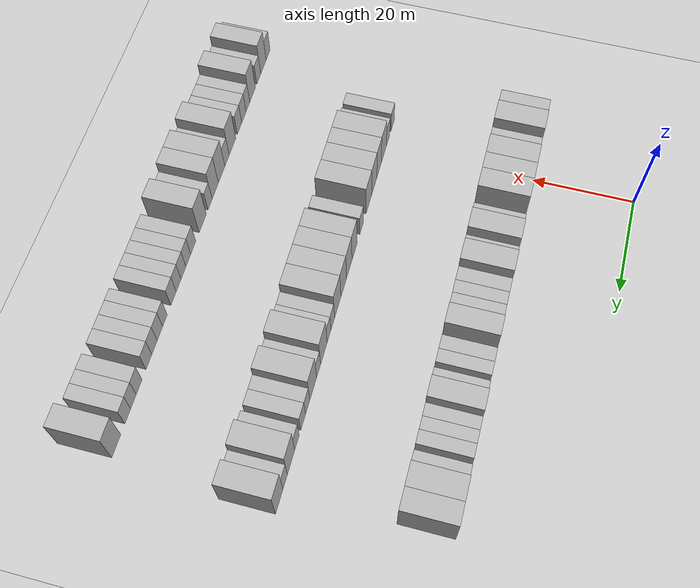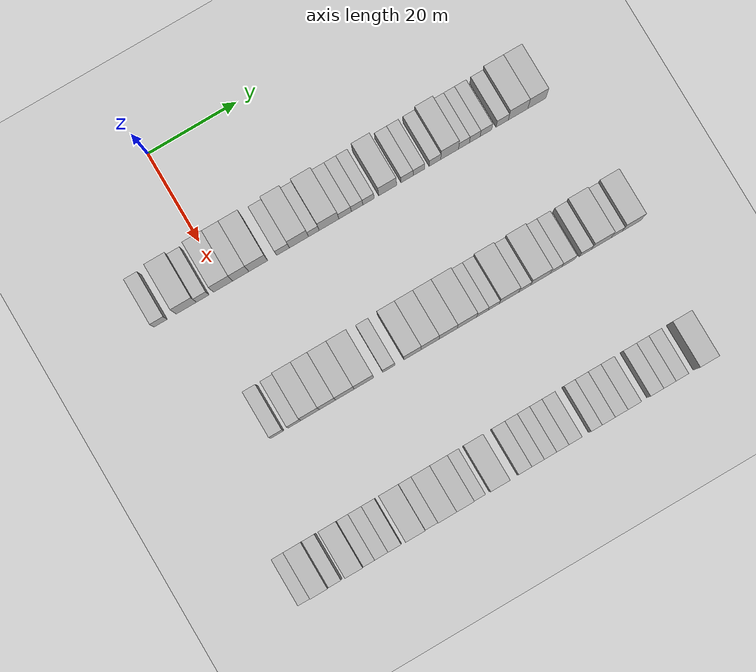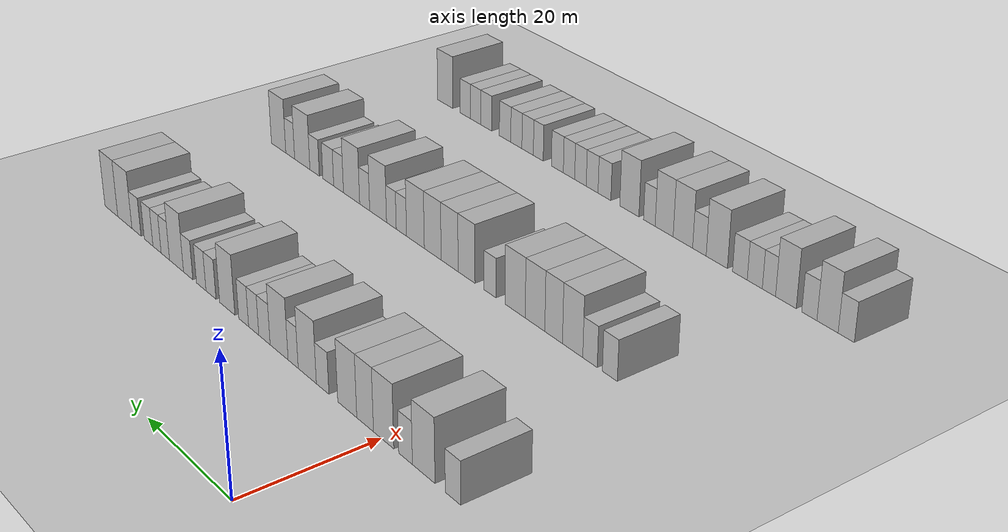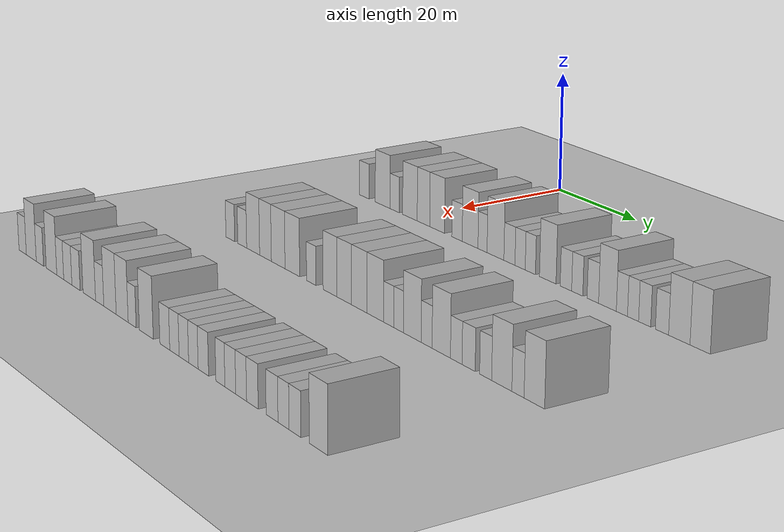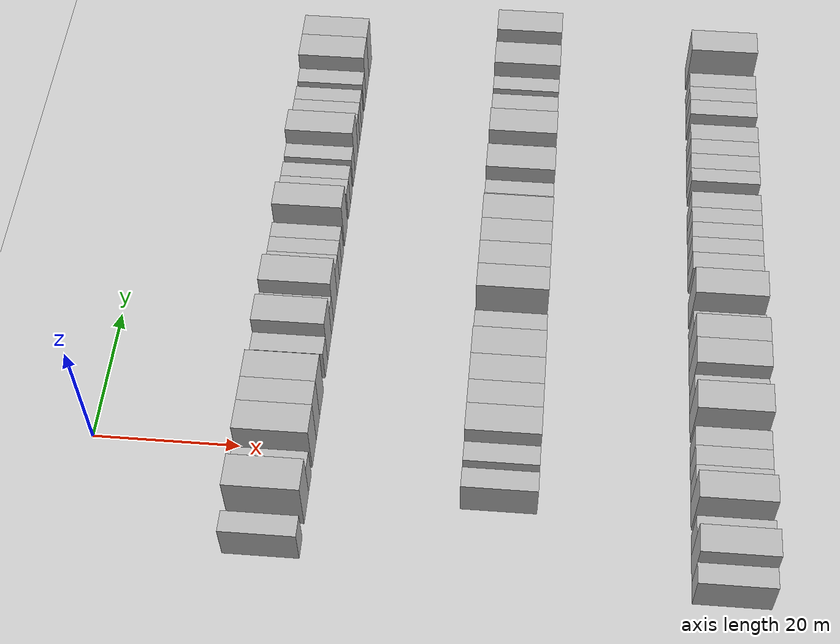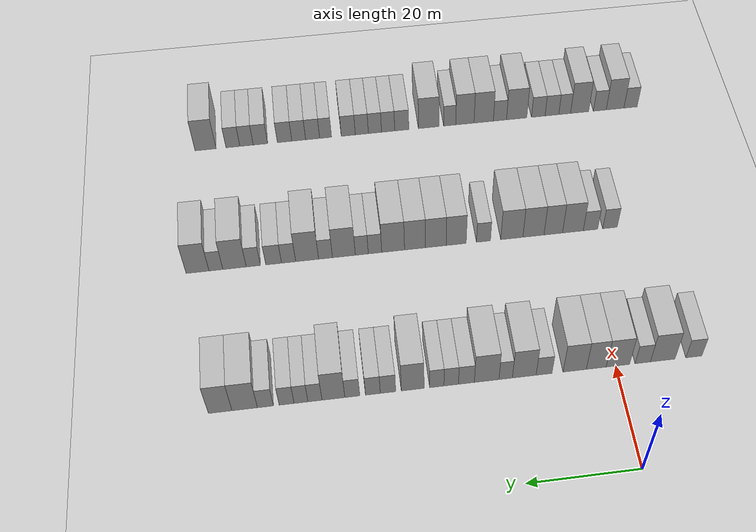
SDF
<sdf version="1.6">
 <world name="default">
  <include><name>ground_plane_1</name><uri>model://HANNAS_ground_plane</uri></include>
  <model name="building_107">
   <static>1</static>
   <pose>25.0000 -14.3076 0 0.000000 0.000000 0.000000</pose>
   <link name="link">
    <pose>0 0 3.00 0 0 0</pose>
    <collision name="collision"><geometry><box><size>10.0000 2.9524 6.0000</size></box></geometry></collision>
    <visual name="visual">
     <cast_shadows>0</cast_shadows>
     <geometry><box><size>10.0000 2.9524 6.0000</size></box></geometry>
     <material>
      <script>
       <uri>model://HANNAS_wall/materials/scripts</uri>
       <uri>model://HANNAS_wall/materials/textures</uri>
       <name>vrc/HANNAS_wall</name>
      </script>
     </material>
    </visual>
   </link>
  </model>
  <model name="building_108">
   <static>1</static>
   <pose>25.0000 -8.5822 0 0.000000 0.000000 0.000000</pose>
   <link name="link">
    <pose>0 0 4.50 0 0 0</pose>
    <collision name="collision"><geometry><box><size>10.0000 4.4984 9.0000</size></box></geometry></collision>
    <visual name="visual">
     <cast_shadows>0</cast_shadows>
     <geometry><box><size>10.0000 4.4984 9.0000</size></box></geometry>
     <material>
      <script>
       <uri>model://HANNAS_wall/materials/scripts</uri>
       <uri>model://HANNAS_wall/materials/textures</uri>
       <name>vrc/HANNAS_wall</name>
      </script>
     </material>
    </visual>
   </link>
  </model>
  <model name="building_109">
   <static>1</static>
   <pose>25.0000 -4.9308 0 0.000000 0.000000 0.000000</pose>
   <link name="link">
    <pose>0 0 3.00 0 0 0</pose>
    <collision name="collision"><geometry><box><size>10.0000 2.8045 6.0000</size></box></geometry></collision>
    <visual name="visual">
     <cast_shadows>0</cast_shadows>
     <geometry><box><size>10.0000 2.8045 6.0000</size></box></geometry>
     <material>
      <script>
       <uri>model://HANNAS_wall/materials/scripts</uri>
       <uri>model://HANNAS_wall/materials/textures</uri>
       <name>vrc/HANNAS_wall</name>
      </script>
     </material>
    </visual>
   </link>
  </model>
  <model name="building_110">
   <static>1</static>
   <pose>25.0000 -0.3886 0 0.000000 0.000000 0.000000</pose>
   <link name="link">
    <pose>0 0 4.50 0 0 0</pose>
    <collision name="collision"><geometry><box><size>10.0000 4.2799 9.0000</size></box></geometry></collision>
    <visual name="visual">
     <cast_shadows>0</cast_shadows>
     <geometry><box><size>10.0000 4.2799 9.0000</size></box></geometry>
     <material>
      <script>
       <uri>model://HANNAS_wall/materials/scripts</uri>
       <uri>model://HANNAS_wall/materials/textures</uri>
       <name>vrc/HANNAS_wall</name>
      </script>
     </material>
    </visual>
   </link>
  </model>
  <model name="building_111">
   <static>1</static>
   <pose>25.0000 3.5572 0 0.000000 0.000000 0.000000</pose>
   <link name="link">
    <pose>0 0 4.50 0 0 0</pose>
    <collision name="collision"><geometry><box><size>10.0000 3.6117 9.0000</size></box></geometry></collision>
    <visual name="visual">
     <cast_shadows>0</cast_shadows>
     <geometry><box><size>10.0000 3.6117 9.0000</size></box></geometry>
     <material>
      <script>
       <uri>model://HANNAS_wall/materials/scripts</uri>
       <uri>model://HANNAS_wall/materials/textures</uri>
       <name>vrc/HANNAS_wall</name>
      </script>
     </material>
    </visual>
   </link>
  </model>
  <model name="building_112">
   <static>1</static>
   <pose>25.0000 7.4691 0 0.000000 0.000000 0.000000</pose>
   <link name="link">
    <pose>0 0 4.50 0 0 0</pose>
    <collision name="collision"><geometry><box><size>10.0000 4.2121 9.0000</size></box></geometry></collision>
    <visual name="visual">
     <cast_shadows>0</cast_shadows>
     <geometry><box><size>10.0000 4.2121 9.0000</size></box></geometry>
     <material>
      <script>
       <uri>model://HANNAS_wall/materials/scripts</uri>
       <uri>model://HANNAS_wall/materials/textures</uri>
       <name>vrc/HANNAS_wall</name>
      </script>
     </material>
    </visual>
   </link>
  </model>
  <model name="building_113">
   <static>1</static>
   <pose>25.0000 13.0116 0 0.000000 0.000000 0.000000</pose>
   <link name="link">
    <pose>0 0 3.00 0 0 0</pose>
    <collision name="collision"><geometry><box><size>10.0000 2.8727 6.0000</size></box></geometry></collision>
    <visual name="visual">
     <cast_shadows>0</cast_shadows>
     <geometry><box><size>10.0000 2.8727 6.0000</size></box></geometry>
     <material>
      <script>
       <uri>model://HANNAS_wall/materials/scripts</uri>
       <uri>model://HANNAS_wall/materials/textures</uri>
       <name>vrc/HANNAS_wall</name>
      </script>
     </material>
    </visual>
   </link>
  </model>
  <model name="building_114">
   <static>1</static>
   <pose>25.0000 16.5808 0 0.000000 0.000000 0.000000</pose>
   <link name="link">
    <pose>0 0 4.50 0 0 0</pose>
    <collision name="collision"><geometry><box><size>10.0000 4.2657 9.0000</size></box></geometry></collision>
    <visual name="visual">
     <cast_shadows>0</cast_shadows>
     <geometry><box><size>10.0000 4.2657 9.0000</size></box></geometry>
     <material>
      <script>
       <uri>model://HANNAS_wall/materials/scripts</uri>
       <uri>model://HANNAS_wall/materials/textures</uri>
       <name>vrc/HANNAS_wall</name>
      </script>
     </material>
    </visual>
   </link>
  </model>
  <model name="building_115">
   <static>1</static>
   <pose>25.0000 19.9189 0 0.000000 0.000000 0.000000</pose>
   <link name="link">
    <pose>0 0 3.00 0 0 0</pose>
    <collision name="collision"><geometry><box><size>10.0000 2.4104 6.0000</size></box></geometry></collision>
    <visual name="visual">
     <cast_shadows>0</cast_shadows>
     <geometry><box><size>10.0000 2.4104 6.0000</size></box></geometry>
     <material>
      <script>
       <uri>model://HANNAS_wall/materials/scripts</uri>
       <uri>model://HANNAS_wall/materials/textures</uri>
       <name>vrc/HANNAS_wall</name>
      </script>
     </material>
    </visual>
   </link>
  </model>
  <model name="building_116">
   <static>1</static>
   <pose>25.0000 23.3220 0 0.000000 0.000000 0.000000</pose>
   <link name="link">
    <pose>0 0 4.50 0 0 0</pose>
    <collision name="collision"><geometry><box><size>10.0000 4.3959 9.0000</size></box></geometry></collision>
    <visual name="visual">
     <cast_shadows>0</cast_shadows>
     <geometry><box><size>10.0000 4.3959 9.0000</size></box></geometry>
     <material>
      <script>
       <uri>model://HANNAS_wall/materials/scripts</uri>
       <uri>model://HANNAS_wall/materials/textures</uri>
       <name>vrc/HANNAS_wall</name>
      </script>
     </material>
    </visual>
   </link>
  </model>
  <model name="building_117">
   <static>1</static>
   <pose>25.0000 26.9374 0 0.000000 0.000000 0.000000</pose>
   <link name="link">
    <pose>0 0 3.00 0 0 0</pose>
    <collision name="collision"><geometry><box><size>10.0000 2.8348 6.0000</size></box></geometry></collision>
    <visual name="visual">
     <cast_shadows>0</cast_shadows>
     <geometry><box><size>10.0000 2.8348 6.0000</size></box></geometry>
     <material>
      <script>
       <uri>model://HANNAS_wall/materials/scripts</uri>
       <uri>model://HANNAS_wall/materials/textures</uri>
       <name>vrc/HANNAS_wall</name>
      </script>
     </material>
    </visual>
   </link>
  </model>
  <model name="building_118">
   <static>1</static>
   <pose>25.0000 29.6490 0 0.000000 0.000000 0.000000</pose>
   <link name="link">
    <pose>0 0 3.00 0 0 0</pose>
    <collision name="collision"><geometry><box><size>10.0000 2.5884 6.0000</size></box></geometry></collision>
    <visual name="visual">
     <cast_shadows>0</cast_shadows>
     <geometry><box><size>10.0000 2.5884 6.0000</size></box></geometry>
     <material>
      <script>
       <uri>model://HANNAS_wall/materials/scripts</uri>
       <uri>model://HANNAS_wall/materials/textures</uri>
       <name>vrc/HANNAS_wall</name>
      </script>
     </material>
    </visual>
   </link>
  </model>
  <model name="building_119">
   <static>1</static>
   <pose>25.0000 32.2151 0 0.000000 0.000000 0.000000</pose>
   <link name="link">
    <pose>0 0 3.00 0 0 0</pose>
    <collision name="collision"><geometry><box><size>10.0000 2.5438 6.0000</size></box></geometry></collision>
    <visual name="visual">
     <cast_shadows>0</cast_shadows>
     <geometry><box><size>10.0000 2.5438 6.0000</size></box></geometry>
     <material>
      <script>
       <uri>model://HANNAS_wall/materials/scripts</uri>
       <uri>model://HANNAS_wall/materials/textures</uri>
       <name>vrc/HANNAS_wall</name>
      </script>
     </material>
    </visual>
   </link>
  </model>
  <model name="building_120">
   <static>1</static>
   <pose>25.0000 36.5011 0 0.000000 0.000000 0.000000</pose>
   <link name="link">
    <pose>0 0 4.50 0 0 0</pose>
    <collision name="collision"><geometry><box><size>10.0000 4.0283 9.0000</size></box></geometry></collision>
    <visual name="visual">
     <cast_shadows>0</cast_shadows>
     <geometry><box><size>10.0000 4.0283 9.0000</size></box></geometry>
     <material>
      <script>
       <uri>model://HANNAS_wall/materials/scripts</uri>
       <uri>model://HANNAS_wall/materials/textures</uri>
       <name>vrc/HANNAS_wall</name>
      </script>
     </material>
    </visual>
   </link>
  </model>
  <model name="building_121">
   <static>1</static>
   <pose>25.0000 40.8736 0 0.000000 0.000000 0.000000</pose>
   <link name="link">
    <pose>0 0 3.00 0 0 0</pose>
    <collision name="collision"><geometry><box><size>10.0000 2.7166 6.0000</size></box></geometry></collision>
    <visual name="visual">
     <cast_shadows>0</cast_shadows>
     <geometry><box><size>10.0000 2.7166 6.0000</size></box></geometry>
     <material>
      <script>
       <uri>model://HANNAS_wall/materials/scripts</uri>
       <uri>model://HANNAS_wall/materials/textures</uri>
       <name>vrc/HANNAS_wall</name>
      </script>
     </material>
    </visual>
   </link>
  </model>
  <model name="building_122">
   <static>1</static>
   <pose>25.0000 43.5399 0 0.000000 0.000000 0.000000</pose>
   <link name="link">
    <pose>0 0 3.00 0 0 0</pose>
    <collision name="collision"><geometry><box><size>10.0000 2.6159 6.0000</size></box></geometry></collision>
    <visual name="visual">
     <cast_shadows>0</cast_shadows>
     <geometry><box><size>10.0000 2.6159 6.0000</size></box></geometry>
     <material>
      <script>
       <uri>model://HANNAS_wall/materials/scripts</uri>
       <uri>model://HANNAS_wall/materials/textures</uri>
       <name>vrc/HANNAS_wall</name>
      </script>
     </material>
    </visual>
   </link>
  </model>
  <model name="building_123">
   <static>1</static>
   <pose>25.0000 47.1643 0 0.000000 0.000000 0.000000</pose>
   <link name="link">
    <pose>0 0 3.00 0 0 0</pose>
    <collision name="collision"><geometry><box><size>10.0000 2.6329 6.0000</size></box></geometry></collision>
    <visual name="visual">
     <cast_shadows>0</cast_shadows>
     <geometry><box><size>10.0000 2.6329 6.0000</size></box></geometry>
     <material>
      <script>
       <uri>model://HANNAS_wall/materials/scripts</uri>
       <uri>model://HANNAS_wall/materials/textures</uri>
       <name>vrc/HANNAS_wall</name>
      </script>
     </material>
    </visual>
   </link>
  </model>
  <model name="building_124">
   <static>1</static>
   <pose>25.0000 50.4833 0 0.000000 0.000000 0.000000</pose>
   <link name="link">
    <pose>0 0 4.50 0 0 0</pose>
    <collision name="collision"><geometry><box><size>10.0000 4.0051 9.0000</size></box></geometry></collision>
    <visual name="visual">
     <cast_shadows>0</cast_shadows>
     <geometry><box><size>10.0000 4.0051 9.0000</size></box></geometry>
     <material>
      <script>
       <uri>model://HANNAS_wall/materials/scripts</uri>
       <uri>model://HANNAS_wall/materials/textures</uri>
       <name>vrc/HANNAS_wall</name>
      </script>
     </material>
    </visual>
   </link>
  </model>
  <model name="building_125">
   <static>1</static>
   <pose>25.0000 53.7181 0 0.000000 0.000000 0.000000</pose>
   <link name="link">
    <pose>0 0 3.00 0 0 0</pose>
    <collision name="collision"><geometry><box><size>10.0000 2.4645 6.0000</size></box></geometry></collision>
    <visual name="visual">
     <cast_shadows>0</cast_shadows>
     <geometry><box><size>10.0000 2.4645 6.0000</size></box></geometry>
     <material>
      <script>
       <uri>model://HANNAS_wall/materials/scripts</uri>
       <uri>model://HANNAS_wall/materials/textures</uri>
       <name>vrc/HANNAS_wall</name>
      </script>
     </material>
    </visual>
   </link>
  </model>
  <model name="building_126">
   <static>1</static>
   <pose>25.0000 56.1617 0 0.000000 0.000000 0.000000</pose>
   <link name="link">
    <pose>0 0 3.00 0 0 0</pose>
    <collision name="collision"><geometry><box><size>10.0000 2.4226 6.0000</size></box></geometry></collision>
    <visual name="visual">
     <cast_shadows>0</cast_shadows>
     <geometry><box><size>10.0000 2.4226 6.0000</size></box></geometry>
     <material>
      <script>
       <uri>model://HANNAS_wall/materials/scripts</uri>
       <uri>model://HANNAS_wall/materials/textures</uri>
       <name>vrc/HANNAS_wall</name>
      </script>
     </material>
    </visual>
   </link>
  </model>
  <model name="building_127">
   <static>1</static>
   <pose>25.0000 58.6759 0 0.000000 0.000000 0.000000</pose>
   <link name="link">
    <pose>0 0 3.00 0 0 0</pose>
    <collision name="collision"><geometry><box><size>10.0000 2.6058 6.0000</size></box></geometry></collision>
    <visual name="visual">
     <cast_shadows>0</cast_shadows>
     <geometry><box><size>10.0000 2.6058 6.0000</size></box></geometry>
     <material>
      <script>
       <uri>model://HANNAS_wall/materials/scripts</uri>
       <uri>model://HANNAS_wall/materials/textures</uri>
       <name>vrc/HANNAS_wall</name>
      </script>
     </material>
    </visual>
   </link>
  </model>
  <model name="building_128">
   <static>1</static>
   <pose>25.0000 62.3687 0 0.000000 0.000000 0.000000</pose>
   <link name="link">
    <pose>0 0 3.00 0 0 0</pose>
    <collision name="collision"><geometry><box><size>10.0000 2.7796 6.0000</size></box></geometry></collision>
    <visual name="visual">
     <cast_shadows>0</cast_shadows>
     <geometry><box><size>10.0000 2.7796 6.0000</size></box></geometry>
     <material>
      <script>
       <uri>model://HANNAS_wall/materials/scripts</uri>
       <uri>model://HANNAS_wall/materials/textures</uri>
       <name>vrc/HANNAS_wall</name>
      </script>
     </material>
    </visual>
   </link>
  </model>
  <model name="building_129">
   <static>1</static>
   <pose>25.0000 65.9655 0 0.000000 0.000000 0.000000</pose>
   <link name="link">
    <pose>0 0 4.50 0 0 0</pose>
    <collision name="collision"><geometry><box><size>10.0000 4.4140 9.0000</size></box></geometry></collision>
    <visual name="visual">
     <cast_shadows>0</cast_shadows>
     <geometry><box><size>10.0000 4.4140 9.0000</size></box></geometry>
     <material>
      <script>
       <uri>model://HANNAS_wall/materials/scripts</uri>
       <uri>model://HANNAS_wall/materials/textures</uri>
       <name>vrc/HANNAS_wall</name>
      </script>
     </material>
    </visual>
   </link>
  </model>
  <model name="building_130">
   <static>1</static>
   <pose>25.0000 70.2178 0 0.000000 0.000000 0.000000</pose>
   <link name="link">
    <pose>0 0 4.50 0 0 0</pose>
    <collision name="collision"><geometry><box><size>10.0000 4.0906 9.0000</size></box></geometry></collision>
    <visual name="visual">
     <cast_shadows>0</cast_shadows>
     <geometry><box><size>10.0000 4.0906 9.0000</size></box></geometry>
     <material>
      <script>
       <uri>model://HANNAS_wall/materials/scripts</uri>
       <uri>model://HANNAS_wall/materials/textures</uri>
       <name>vrc/HANNAS_wall</name>
      </script>
     </material>
    </visual>
   </link>
  </model>
  <model name="building_339">
   <static>1</static>
   <pose>55.0000 -5.6734 0 0.000000 0.000000 0.000000</pose>
   <link name="link">
    <pose>0 0 3.00 0 0 0</pose>
    <collision name="collision"><geometry><box><size>10.0000 2.8665 6.0000</size></box></geometry></collision>
    <visual name="visual">
     <cast_shadows>0</cast_shadows>
     <geometry><box><size>10.0000 2.8665 6.0000</size></box></geometry>
     <material>
      <script>
       <uri>model://HANNAS_wall/materials/scripts</uri>
       <uri>model://HANNAS_wall/materials/textures</uri>
       <name>vrc/HANNAS_wall</name>
      </script>
     </material>
    </visual>
   </link>
  </model>
  <model name="building_340">
   <static>1</static>
   <pose>55.0000 -1.8192 0 0.000000 0.000000 0.000000</pose>
   <link name="link">
    <pose>0 0 3.00 0 0 0</pose>
    <collision name="collision"><geometry><box><size>10.0000 2.8419 6.0000</size></box></geometry></collision>
    <visual name="visual">
     <cast_shadows>0</cast_shadows>
     <geometry><box><size>10.0000 2.8419 6.0000</size></box></geometry>
     <material>
      <script>
       <uri>model://HANNAS_wall/materials/scripts</uri>
       <uri>model://HANNAS_wall/materials/textures</uri>
       <name>vrc/HANNAS_wall</name>
      </script>
     </material>
    </visual>
   </link>
  </model>
  <model name="building_341">
   <static>1</static>
   <pose>55.0000 1.6430 0 0.000000 0.000000 0.000000</pose>
   <link name="link">
    <pose>0 0 4.50 0 0 0</pose>
    <collision name="collision"><geometry><box><size>10.0000 4.0826 9.0000</size></box></geometry></collision>
    <visual name="visual">
     <cast_shadows>0</cast_shadows>
     <geometry><box><size>10.0000 4.0826 9.0000</size></box></geometry>
     <material>
      <script>
       <uri>model://HANNAS_wall/materials/scripts</uri>
       <uri>model://HANNAS_wall/materials/textures</uri>
       <name>vrc/HANNAS_wall</name>
      </script>
     </material>
    </visual>
   </link>
  </model>
  <model name="building_342">
   <static>1</static>
   <pose>55.0000 5.4972 0 0.000000 0.000000 0.000000</pose>
   <link name="link">
    <pose>0 0 4.50 0 0 0</pose>
    <collision name="collision"><geometry><box><size>10.0000 3.6257 9.0000</size></box></geometry></collision>
    <visual name="visual">
     <cast_shadows>0</cast_shadows>
     <geometry><box><size>10.0000 3.6257 9.0000</size></box></geometry>
     <material>
      <script>
       <uri>model://HANNAS_wall/materials/scripts</uri>
       <uri>model://HANNAS_wall/materials/textures</uri>
       <name>vrc/HANNAS_wall</name>
      </script>
     </material>
    </visual>
   </link>
  </model>
  <model name="building_343">
   <static>1</static>
   <pose>55.0000 9.3717 0 0.000000 0.000000 0.000000</pose>
   <link name="link">
    <pose>0 0 4.50 0 0 0</pose>
    <collision name="collision"><geometry><box><size>10.0000 4.1234 9.0000</size></box></geometry></collision>
    <visual name="visual">
     <cast_shadows>0</cast_shadows>
     <geometry><box><size>10.0000 4.1234 9.0000</size></box></geometry>
     <material>
      <script>
       <uri>model://HANNAS_wall/materials/scripts</uri>
       <uri>model://HANNAS_wall/materials/textures</uri>
       <name>vrc/HANNAS_wall</name>
      </script>
     </material>
    </visual>
   </link>
  </model>
  <model name="building_344">
   <static>1</static>
   <pose>55.0000 13.5989 0 0.000000 0.000000 0.000000</pose>
   <link name="link">
    <pose>0 0 4.50 0 0 0</pose>
    <collision name="collision"><geometry><box><size>10.0000 4.3309 9.0000</size></box></geometry></collision>
    <visual name="visual">
     <cast_shadows>0</cast_shadows>
     <geometry><box><size>10.0000 4.3309 9.0000</size></box></geometry>
     <material>
      <script>
       <uri>model://HANNAS_wall/materials/scripts</uri>
       <uri>model://HANNAS_wall/materials/textures</uri>
       <name>vrc/HANNAS_wall</name>
      </script>
     </material>
    </visual>
   </link>
  </model>
  <model name="building_345">
   <static>1</static>
   <pose>55.0000 19.1242 0 0.000000 0.000000 0.000000</pose>
   <link name="link">
    <pose>0 0 3.00 0 0 0</pose>
    <collision name="collision"><geometry><box><size>10.0000 2.7197 6.0000</size></box></geometry></collision>
    <visual name="visual">
     <cast_shadows>0</cast_shadows>
     <geometry><box><size>10.0000 2.7197 6.0000</size></box></geometry>
     <material>
      <script>
       <uri>model://HANNAS_wall/materials/scripts</uri>
       <uri>model://HANNAS_wall/materials/textures</uri>
       <name>vrc/HANNAS_wall</name>
      </script>
     </material>
    </visual>
   </link>
  </model>
  <model name="building_346">
   <static>1</static>
   <pose>55.0000 24.4193 0 0.000000 0.000000 0.000000</pose>
   <link name="link">
    <pose>0 0 4.50 0 0 0</pose>
    <collision name="collision"><geometry><box><size>10.0000 3.8706 9.0000</size></box></geometry></collision>
    <visual name="visual">
     <cast_shadows>0</cast_shadows>
     <geometry><box><size>10.0000 3.8706 9.0000</size></box></geometry>
     <material>
      <script>
       <uri>model://HANNAS_wall/materials/scripts</uri>
       <uri>model://HANNAS_wall/materials/textures</uri>
       <name>vrc/HANNAS_wall</name>
      </script>
     </material>
    </visual>
   </link>
  </model>
  <model name="building_347">
   <static>1</static>
   <pose>55.0000 28.3466 0 0.000000 0.000000 0.000000</pose>
   <link name="link">
    <pose>0 0 4.50 0 0 0</pose>
    <collision name="collision"><geometry><box><size>10.0000 3.9839 9.0000</size></box></geometry></collision>
    <visual name="visual">
     <cast_shadows>0</cast_shadows>
     <geometry><box><size>10.0000 3.9839 9.0000</size></box></geometry>
     <material>
      <script>
       <uri>model://HANNAS_wall/materials/scripts</uri>
       <uri>model://HANNAS_wall/materials/textures</uri>
       <name>vrc/HANNAS_wall</name>
      </script>
     </material>
    </visual>
   </link>
  </model>
  <model name="building_348">
   <static>1</static>
   <pose>55.0000 32.3600 0 0.000000 0.000000 0.000000</pose>
   <link name="link">
    <pose>0 0 4.50 0 0 0</pose>
    <collision name="collision"><geometry><box><size>10.0000 4.0429 9.0000</size></box></geometry></collision>
    <visual name="visual">
     <cast_shadows>0</cast_shadows>
     <geometry><box><size>10.0000 4.0429 9.0000</size></box></geometry>
     <material>
      <script>
       <uri>model://HANNAS_wall/materials/scripts</uri>
       <uri>model://HANNAS_wall/materials/textures</uri>
       <name>vrc/HANNAS_wall</name>
      </script>
     </material>
    </visual>
   </link>
  </model>
  <model name="building_349">
   <static>1</static>
   <pose>55.0000 36.5686 0 0.000000 0.000000 0.000000</pose>
   <link name="link">
    <pose>0 0 4.50 0 0 0</pose>
    <collision name="collision"><geometry><box><size>10.0000 4.3743 9.0000</size></box></geometry></collision>
    <visual name="visual">
     <cast_shadows>0</cast_shadows>
     <geometry><box><size>10.0000 4.3743 9.0000</size></box></geometry>
     <material>
      <script>
       <uri>model://HANNAS_wall/materials/scripts</uri>
       <uri>model://HANNAS_wall/materials/textures</uri>
       <name>vrc/HANNAS_wall</name>
      </script>
     </material>
    </visual>
   </link>
  </model>
  <model name="building_350">
   <static>1</static>
   <pose>55.0000 40.0493 0 0.000000 0.000000 0.000000</pose>
   <link name="link">
    <pose>0 0 3.00 0 0 0</pose>
    <collision name="collision"><geometry><box><size>10.0000 2.5872 6.0000</size></box></geometry></collision>
    <visual name="visual">
     <cast_shadows>0</cast_shadows>
     <geometry><box><size>10.0000 2.5872 6.0000</size></box></geometry>
     <material>
      <script>
       <uri>model://HANNAS_wall/materials/scripts</uri>
       <uri>model://HANNAS_wall/materials/textures</uri>
       <name>vrc/HANNAS_wall</name>
      </script>
     </material>
    </visual>
   </link>
  </model>
  <model name="building_351">
   <static>1</static>
   <pose>55.0000 42.5776 0 0.000000 0.000000 0.000000</pose>
   <link name="link">
    <pose>0 0 3.00 0 0 0</pose>
    <collision name="collision"><geometry><box><size>10.0000 2.4695 6.0000</size></box></geometry></collision>
    <visual name="visual">
     <cast_shadows>0</cast_shadows>
     <geometry><box><size>10.0000 2.4695 6.0000</size></box></geometry>
     <material>
      <script>
       <uri>model://HANNAS_wall/materials/scripts</uri>
       <uri>model://HANNAS_wall/materials/textures</uri>
       <name>vrc/HANNAS_wall</name>
      </script>
     </material>
    </visual>
   </link>
  </model>
  <model name="building_352">
   <static>1</static>
   <pose>55.0000 45.9955 0 0.000000 0.000000 0.000000</pose>
   <link name="link">
    <pose>0 0 4.50 0 0 0</pose>
    <collision name="collision"><geometry><box><size>10.0000 4.3663 9.0000</size></box></geometry></collision>
    <visual name="visual">
     <cast_shadows>0</cast_shadows>
     <geometry><box><size>10.0000 4.3663 9.0000</size></box></geometry>
     <material>
      <script>
       <uri>model://HANNAS_wall/materials/scripts</uri>
       <uri>model://HANNAS_wall/materials/textures</uri>
       <name>vrc/HANNAS_wall</name>
      </script>
     </material>
    </visual>
   </link>
  </model>
  <model name="building_353">
   <static>1</static>
   <pose>55.0000 49.4982 0 0.000000 0.000000 0.000000</pose>
   <link name="link">
    <pose>0 0 3.00 0 0 0</pose>
    <collision name="collision"><geometry><box><size>10.0000 2.6390 6.0000</size></box></geometry></collision>
    <visual name="visual">
     <cast_shadows>0</cast_shadows>
     <geometry><box><size>10.0000 2.6390 6.0000</size></box></geometry>
     <material>
      <script>
       <uri>model://HANNAS_wall/materials/scripts</uri>
       <uri>model://HANNAS_wall/materials/textures</uri>
       <name>vrc/HANNAS_wall</name>
      </script>
     </material>
    </visual>
   </link>
  </model>
  <model name="building_354">
   <static>1</static>
   <pose>55.0000 52.9944 0 0.000000 0.000000 0.000000</pose>
   <link name="link">
    <pose>0 0 4.50 0 0 0</pose>
    <collision name="collision"><geometry><box><size>10.0000 4.3535 9.0000</size></box></geometry></collision>
    <visual name="visual">
     <cast_shadows>0</cast_shadows>
     <geometry><box><size>10.0000 4.3535 9.0000</size></box></geometry>
     <material>
      <script>
       <uri>model://HANNAS_wall/materials/scripts</uri>
       <uri>model://HANNAS_wall/materials/textures</uri>
       <name>vrc/HANNAS_wall</name>
      </script>
     </material>
    </visual>
   </link>
  </model>
  <model name="building_355">
   <static>1</static>
   <pose>55.0000 56.5116 0 0.000000 0.000000 0.000000</pose>
   <link name="link">
    <pose>0 0 3.00 0 0 0</pose>
    <collision name="collision"><geometry><box><size>10.0000 2.6808 6.0000</size></box></geometry></collision>
    <visual name="visual">
     <cast_shadows>0</cast_shadows>
     <geometry><box><size>10.0000 2.6808 6.0000</size></box></geometry>
     <material>
      <script>
       <uri>model://HANNAS_wall/materials/scripts</uri>
       <uri>model://HANNAS_wall/materials/textures</uri>
       <name>vrc/HANNAS_wall</name>
      </script>
     </material>
    </visual>
   </link>
  </model>
  <model name="building_356">
   <static>1</static>
   <pose>55.0000 59.3469 0 0.000000 0.000000 0.000000</pose>
   <link name="link">
    <pose>0 0 3.00 0 0 0</pose>
    <collision name="collision"><geometry><box><size>10.0000 2.9897 6.0000</size></box></geometry></collision>
    <visual name="visual">
     <cast_shadows>0</cast_shadows>
     <geometry><box><size>10.0000 2.9897 6.0000</size></box></geometry>
     <material>
      <script>
       <uri>model://HANNAS_wall/materials/scripts</uri>
       <uri>model://HANNAS_wall/materials/textures</uri>
       <name>vrc/HANNAS_wall</name>
      </script>
     </material>
    </visual>
   </link>
  </model>
  <model name="building_357">
   <static>1</static>
   <pose>55.0000 63.1809 0 0.000000 0.000000 0.000000</pose>
   <link name="link">
    <pose>0 0 3.00 0 0 0</pose>
    <collision name="collision"><geometry><box><size>10.0000 2.6785 6.0000</size></box></geometry></collision>
    <visual name="visual">
     <cast_shadows>0</cast_shadows>
     <geometry><box><size>10.0000 2.6785 6.0000</size></box></geometry>
     <material>
      <script>
       <uri>model://HANNAS_wall/materials/scripts</uri>
       <uri>model://HANNAS_wall/materials/textures</uri>
       <name>vrc/HANNAS_wall</name>
      </script>
     </material>
    </visual>
   </link>
  </model>
  <model name="building_358">
   <static>1</static>
   <pose>55.0000 66.7225 0 0.000000 0.000000 0.000000</pose>
   <link name="link">
    <pose>0 0 4.50 0 0 0</pose>
    <collision name="collision"><geometry><box><size>10.0000 4.4048 9.0000</size></box></geometry></collision>
    <visual name="visual">
     <cast_shadows>0</cast_shadows>
     <geometry><box><size>10.0000 4.4048 9.0000</size></box></geometry>
     <material>
      <script>
       <uri>model://HANNAS_wall/materials/scripts</uri>
       <uri>model://HANNAS_wall/materials/textures</uri>
       <name>vrc/HANNAS_wall</name>
      </script>
     </material>
    </visual>
   </link>
  </model>
  <model name="building_359">
   <static>1</static>
   <pose>55.0000 70.2234 0 0.000000 0.000000 0.000000</pose>
   <link name="link">
    <pose>0 0 3.00 0 0 0</pose>
    <collision name="collision"><geometry><box><size>10.0000 2.5970 6.0000</size></box></geometry></collision>
    <visual name="visual">
     <cast_shadows>0</cast_shadows>
     <geometry><box><size>10.0000 2.5970 6.0000</size></box></geometry>
     <material>
      <script>
       <uri>model://HANNAS_wall/materials/scripts</uri>
       <uri>model://HANNAS_wall/materials/textures</uri>
       <name>vrc/HANNAS_wall</name>
      </script>
     </material>
    </visual>
   </link>
  </model>
  <model name="building_360">
   <static>1</static>
   <pose>55.0000 73.6665 0 0.000000 0.000000 0.000000</pose>
   <link name="link">
    <pose>0 0 4.50 0 0 0</pose>
    <collision name="collision"><geometry><box><size>10.0000 4.2892 9.0000</size></box></geometry></collision>
    <visual name="visual">
     <cast_shadows>0</cast_shadows>
     <geometry><box><size>10.0000 4.2892 9.0000</size></box></geometry>
     <material>
      <script>
       <uri>model://HANNAS_wall/materials/scripts</uri>
       <uri>model://HANNAS_wall/materials/textures</uri>
       <name>vrc/HANNAS_wall</name>
      </script>
     </material>
    </visual>
   </link>
  </model>
  <model name="building_547">
   <static>1</static>
   <pose>85.0000 -16.7911 0 0.000000 0.000000 0.000000</pose>
   <link name="link">
    <pose>0 0 3.00 0 0 0</pose>
    <collision name="collision"><geometry><box><size>10.0000 2.8262 6.0000</size></box></geometry></collision>
    <visual name="visual">
     <cast_shadows>0</cast_shadows>
     <geometry><box><size>10.0000 2.8262 6.0000</size></box></geometry>
     <material>
      <script>
       <uri>model://HANNAS_wall/materials/scripts</uri>
       <uri>model://HANNAS_wall/materials/textures</uri>
       <name>vrc/HANNAS_wall</name>
      </script>
     </material>
    </visual>
   </link>
  </model>
  <model name="building_548">
   <static>1</static>
   <pose>85.0000 -13.4906 0 0.000000 0.000000 0.000000</pose>
   <link name="link">
    <pose>0 0 4.50 0 0 0</pose>
    <collision name="collision"><geometry><box><size>10.0000 3.7749 9.0000</size></box></geometry></collision>
    <visual name="visual">
     <cast_shadows>0</cast_shadows>
     <geometry><box><size>10.0000 3.7749 9.0000</size></box></geometry>
     <material>
      <script>
       <uri>model://HANNAS_wall/materials/scripts</uri>
       <uri>model://HANNAS_wall/materials/textures</uri>
       <name>vrc/HANNAS_wall</name>
      </script>
     </material>
    </visual>
   </link>
  </model>
  <model name="building_549">
   <static>1</static>
   <pose>85.0000 -10.2312 0 0.000000 0.000000 0.000000</pose>
   <link name="link">
    <pose>0 0 3.00 0 0 0</pose>
    <collision name="collision"><geometry><box><size>10.0000 2.7438 6.0000</size></box></geometry></collision>
    <visual name="visual">
     <cast_shadows>0</cast_shadows>
     <geometry><box><size>10.0000 2.7438 6.0000</size></box></geometry>
     <material>
      <script>
       <uri>model://HANNAS_wall/materials/scripts</uri>
       <uri>model://HANNAS_wall/materials/textures</uri>
       <name>vrc/HANNAS_wall</name>
      </script>
     </material>
    </visual>
   </link>
  </model>
  <model name="building_550">
   <static>1</static>
   <pose>85.0000 -5.9383 0 0.000000 0.000000 0.000000</pose>
   <link name="link">
    <pose>0 0 4.50 0 0 0</pose>
    <collision name="collision"><geometry><box><size>10.0000 3.8420 9.0000</size></box></geometry></collision>
    <visual name="visual">
     <cast_shadows>0</cast_shadows>
     <geometry><box><size>10.0000 3.8420 9.0000</size></box></geometry>
     <material>
      <script>
       <uri>model://HANNAS_wall/materials/scripts</uri>
       <uri>model://HANNAS_wall/materials/textures</uri>
       <name>vrc/HANNAS_wall</name>
      </script>
     </material>
    </visual>
   </link>
  </model>
  <model name="building_551">
   <static>1</static>
   <pose>85.0000 -2.7691 0 0.000000 0.000000 0.000000</pose>
   <link name="link">
    <pose>0 0 3.00 0 0 0</pose>
    <collision name="collision"><geometry><box><size>10.0000 2.4963 6.0000</size></box></geometry></collision>
    <visual name="visual">
     <cast_shadows>0</cast_shadows>
     <geometry><box><size>10.0000 2.4963 6.0000</size></box></geometry>
     <material>
      <script>
       <uri>model://HANNAS_wall/materials/scripts</uri>
       <uri>model://HANNAS_wall/materials/textures</uri>
       <name>vrc/HANNAS_wall</name>
      </script>
     </material>
    </visual>
   </link>
  </model>
  <model name="building_552">
   <static>1</static>
   <pose>85.0000 -0.0714 0 0.000000 0.000000 0.000000</pose>
   <link name="link">
    <pose>0 0 3.00 0 0 0</pose>
    <collision name="collision"><geometry><box><size>10.0000 2.8990 6.0000</size></box></geometry></collision>
    <visual name="visual">
     <cast_shadows>0</cast_shadows>
     <geometry><box><size>10.0000 2.8990 6.0000</size></box></geometry>
     <material>
      <script>
       <uri>model://HANNAS_wall/materials/scripts</uri>
       <uri>model://HANNAS_wall/materials/textures</uri>
       <name>vrc/HANNAS_wall</name>
      </script>
     </material>
    </visual>
   </link>
  </model>
  <model name="building_553">
   <static>1</static>
   <pose>85.0000 2.8144 0 0.000000 0.000000 0.000000</pose>
   <link name="link">
    <pose>0 0 3.00 0 0 0</pose>
    <collision name="collision"><geometry><box><size>10.0000 2.8728 6.0000</size></box></geometry></collision>
    <visual name="visual">
     <cast_shadows>0</cast_shadows>
     <geometry><box><size>10.0000 2.8728 6.0000</size></box></geometry>
     <material>
      <script>
       <uri>model://HANNAS_wall/materials/scripts</uri>
       <uri>model://HANNAS_wall/materials/textures</uri>
       <name>vrc/HANNAS_wall</name>
      </script>
     </material>
    </visual>
   </link>
  </model>
  <model name="building_554">
   <static>1</static>
   <pose>85.0000 7.3811 0 0.000000 0.000000 0.000000</pose>
   <link name="link">
    <pose>0 0 4.50 0 0 0</pose>
    <collision name="collision"><geometry><box><size>10.0000 4.2606 9.0000</size></box></geometry></collision>
    <visual name="visual">
     <cast_shadows>0</cast_shadows>
     <geometry><box><size>10.0000 4.2606 9.0000</size></box></geometry>
     <material>
      <script>
       <uri>model://HANNAS_wall/materials/scripts</uri>
       <uri>model://HANNAS_wall/materials/textures</uri>
       <name>vrc/HANNAS_wall</name>
      </script>
     </material>
    </visual>
   </link>
  </model>
  <model name="building_555">
   <static>1</static>
   <pose>85.0000 10.8913 0 0.000000 0.000000 0.000000</pose>
   <link name="link">
    <pose>0 0 3.00 0 0 0</pose>
    <collision name="collision"><geometry><box><size>10.0000 2.7597 6.0000</size></box></geometry></collision>
    <visual name="visual">
     <cast_shadows>0</cast_shadows>
     <geometry><box><size>10.0000 2.7597 6.0000</size></box></geometry>
     <material>
      <script>
       <uri>model://HANNAS_wall/materials/scripts</uri>
       <uri>model://HANNAS_wall/materials/textures</uri>
       <name>vrc/HANNAS_wall</name>
      </script>
     </material>
    </visual>
   </link>
  </model>
  <model name="building_556">
   <static>1</static>
   <pose>85.0000 14.3005 0 0.000000 0.000000 0.000000</pose>
   <link name="link">
    <pose>0 0 4.50 0 0 0</pose>
    <collision name="collision"><geometry><box><size>10.0000 4.0588 9.0000</size></box></geometry></collision>
    <visual name="visual">
     <cast_shadows>0</cast_shadows>
     <geometry><box><size>10.0000 4.0588 9.0000</size></box></geometry>
     <material>
      <script>
       <uri>model://HANNAS_wall/materials/scripts</uri>
       <uri>model://HANNAS_wall/materials/textures</uri>
       <name>vrc/HANNAS_wall</name>
      </script>
     </material>
    </visual>
   </link>
  </model>
  <model name="building_557">
   <static>1</static>
   <pose>85.0000 18.2470 0 0.000000 0.000000 0.000000</pose>
   <link name="link">
    <pose>0 0 4.50 0 0 0</pose>
    <collision name="collision"><geometry><box><size>10.0000 3.8343 9.0000</size></box></geometry></collision>
    <visual name="visual">
     <cast_shadows>0</cast_shadows>
     <geometry><box><size>10.0000 3.8343 9.0000</size></box></geometry>
     <material>
      <script>
       <uri>model://HANNAS_wall/materials/scripts</uri>
       <uri>model://HANNAS_wall/materials/textures</uri>
       <name>vrc/HANNAS_wall</name>
      </script>
     </material>
    </visual>
   </link>
  </model>
  <model name="building_558">
   <static>1</static>
   <pose>85.0000 21.4236 0 0.000000 0.000000 0.000000</pose>
   <link name="link">
    <pose>0 0 3.00 0 0 0</pose>
    <collision name="collision"><geometry><box><size>10.0000 2.5189 6.0000</size></box></geometry></collision>
    <visual name="visual">
     <cast_shadows>0</cast_shadows>
     <geometry><box><size>10.0000 2.5189 6.0000</size></box></geometry>
     <material>
      <script>
       <uri>model://HANNAS_wall/materials/scripts</uri>
       <uri>model://HANNAS_wall/materials/textures</uri>
       <name>vrc/HANNAS_wall</name>
      </script>
     </material>
    </visual>
   </link>
  </model>
  <model name="building_559">
   <static>1</static>
   <pose>85.0000 25.8088 0 0.000000 0.000000 0.000000</pose>
   <link name="link">
    <pose>0 0 4.50 0 0 0</pose>
    <collision name="collision"><geometry><box><size>10.0000 4.2515 9.0000</size></box></geometry></collision>
    <visual name="visual">
     <cast_shadows>0</cast_shadows>
     <geometry><box><size>10.0000 4.2515 9.0000</size></box></geometry>
     <material>
      <script>
       <uri>model://HANNAS_wall/materials/scripts</uri>
       <uri>model://HANNAS_wall/materials/textures</uri>
       <name>vrc/HANNAS_wall</name>
      </script>
     </material>
    </visual>
   </link>
  </model>
  <model name="building_560">
   <static>1</static>
   <pose>85.0000 31.3956 0 0.000000 0.000000 0.000000</pose>
   <link name="link">
    <pose>0 0 3.00 0 0 0</pose>
    <collision name="collision"><geometry><box><size>10.0000 2.9220 6.0000</size></box></geometry></collision>
    <visual name="visual">
     <cast_shadows>0</cast_shadows>
     <geometry><box><size>10.0000 2.9220 6.0000</size></box></geometry>
     <material>
      <script>
       <uri>model://HANNAS_wall/materials/scripts</uri>
       <uri>model://HANNAS_wall/materials/textures</uri>
       <name>vrc/HANNAS_wall</name>
      </script>
     </material>
    </visual>
   </link>
  </model>
  <model name="building_561">
   <static>1</static>
   <pose>85.0000 34.2260 0 0.000000 0.000000 0.000000</pose>
   <link name="link">
    <pose>0 0 3.00 0 0 0</pose>
    <collision name="collision"><geometry><box><size>10.0000 2.7387 6.0000</size></box></geometry></collision>
    <visual name="visual">
     <cast_shadows>0</cast_shadows>
     <geometry><box><size>10.0000 2.7387 6.0000</size></box></geometry>
     <material>
      <script>
       <uri>model://HANNAS_wall/materials/scripts</uri>
       <uri>model://HANNAS_wall/materials/textures</uri>
       <name>vrc/HANNAS_wall</name>
      </script>
     </material>
    </visual>
   </link>
  </model>
  <model name="building_562">
   <static>1</static>
   <pose>85.0000 36.9540 0 0.000000 0.000000 0.000000</pose>
   <link name="link">
    <pose>0 0 3.00 0 0 0</pose>
    <collision name="collision"><geometry><box><size>10.0000 2.7173 6.0000</size></box></geometry></collision>
    <visual name="visual">
     <cast_shadows>0</cast_shadows>
     <geometry><box><size>10.0000 2.7173 6.0000</size></box></geometry>
     <material>
      <script>
       <uri>model://HANNAS_wall/materials/scripts</uri>
       <uri>model://HANNAS_wall/materials/textures</uri>
       <name>vrc/HANNAS_wall</name>
      </script>
     </material>
    </visual>
   </link>
  </model>
  <model name="building_563">
   <static>1</static>
   <pose>85.0000 39.6587 0 0.000000 0.000000 0.000000</pose>
   <link name="link">
    <pose>0 0 3.00 0 0 0</pose>
    <collision name="collision"><geometry><box><size>10.0000 2.6921 6.0000</size></box></geometry></collision>
    <visual name="visual">
     <cast_shadows>0</cast_shadows>
     <geometry><box><size>10.0000 2.6921 6.0000</size></box></geometry>
     <material>
      <script>
       <uri>model://HANNAS_wall/materials/scripts</uri>
       <uri>model://HANNAS_wall/materials/textures</uri>
       <name>vrc/HANNAS_wall</name>
      </script>
     </material>
    </visual>
   </link>
  </model>
  <model name="building_564">
   <static>1</static>
   <pose>85.0000 42.4511 0 0.000000 0.000000 0.000000</pose>
   <link name="link">
    <pose>0 0 3.00 0 0 0</pose>
    <collision name="collision"><geometry><box><size>10.0000 2.8926 6.0000</size></box></geometry></collision>
    <visual name="visual">
     <cast_shadows>0</cast_shadows>
     <geometry><box><size>10.0000 2.8926 6.0000</size></box></geometry>
     <material>
      <script>
       <uri>model://HANNAS_wall/materials/scripts</uri>
       <uri>model://HANNAS_wall/materials/textures</uri>
       <name>vrc/HANNAS_wall</name>
      </script>
     </material>
    </visual>
   </link>
  </model>
  <model name="building_565">
   <static>1</static>
   <pose>85.0000 47.1148 0 0.000000 0.000000 0.000000</pose>
   <link name="link">
    <pose>0 0 3.00 0 0 0</pose>
    <collision name="collision"><geometry><box><size>10.0000 2.4348 6.0000</size></box></geometry></collision>
    <visual name="visual">
     <cast_shadows>0</cast_shadows>
     <geometry><box><size>10.0000 2.4348 6.0000</size></box></geometry>
     <material>
      <script>
       <uri>model://HANNAS_wall/materials/scripts</uri>
       <uri>model://HANNAS_wall/materials/textures</uri>
       <name>vrc/HANNAS_wall</name>
      </script>
     </material>
    </visual>
   </link>
  </model>
  <model name="building_566">
   <static>1</static>
   <pose>85.0000 49.7707 0 0.000000 0.000000 0.000000</pose>
   <link name="link">
    <pose>0 0 3.00 0 0 0</pose>
    <collision name="collision"><geometry><box><size>10.0000 2.8770 6.0000</size></box></geometry></collision>
    <visual name="visual">
     <cast_shadows>0</cast_shadows>
     <geometry><box><size>10.0000 2.8770 6.0000</size></box></geometry>
     <material>
      <script>
       <uri>model://HANNAS_wall/materials/scripts</uri>
       <uri>model://HANNAS_wall/materials/textures</uri>
       <name>vrc/HANNAS_wall</name>
      </script>
     </material>
    </visual>
   </link>
  </model>
  <model name="building_567">
   <static>1</static>
   <pose>85.0000 52.6200 0 0.000000 0.000000 0.000000</pose>
   <link name="link">
    <pose>0 0 3.00 0 0 0</pose>
    <collision name="collision"><geometry><box><size>10.0000 2.8217 6.0000</size></box></geometry></collision>
    <visual name="visual">
     <cast_shadows>0</cast_shadows>
     <geometry><box><size>10.0000 2.8217 6.0000</size></box></geometry>
     <material>
      <script>
       <uri>model://HANNAS_wall/materials/scripts</uri>
       <uri>model://HANNAS_wall/materials/textures</uri>
       <name>vrc/HANNAS_wall</name>
      </script>
     </material>
    </visual>
   </link>
  </model>
  <model name="building_568">
   <static>1</static>
   <pose>85.0000 55.5124 0 0.000000 0.000000 0.000000</pose>
   <link name="link">
    <pose>0 0 3.00 0 0 0</pose>
    <collision name="collision"><geometry><box><size>10.0000 2.9632 6.0000</size></box></geometry></collision>
    <visual name="visual">
     <cast_shadows>0</cast_shadows>
     <geometry><box><size>10.0000 2.9632 6.0000</size></box></geometry>
     <material>
      <script>
       <uri>model://HANNAS_wall/materials/scripts</uri>
       <uri>model://HANNAS_wall/materials/textures</uri>
       <name>vrc/HANNAS_wall</name>
      </script>
     </material>
    </visual>
   </link>
  </model>
  <model name="building_569">
   <static>1</static>
   <pose>85.0000 60.4585 0 0.000000 0.000000 0.000000</pose>
   <link name="link">
    <pose>0 0 3.00 0 0 0</pose>
    <collision name="collision"><geometry><box><size>10.0000 2.9290 6.0000</size></box></geometry></collision>
    <visual name="visual">
     <cast_shadows>0</cast_shadows>
     <geometry><box><size>10.0000 2.9290 6.0000</size></box></geometry>
     <material>
      <script>
       <uri>model://HANNAS_wall/materials/scripts</uri>
       <uri>model://HANNAS_wall/materials/textures</uri>
       <name>vrc/HANNAS_wall</name>
      </script>
     </material>
    </visual>
   </link>
  </model>
  <model name="building_570">
   <static>1</static>
   <pose>85.0000 63.2786 0 0.000000 0.000000 0.000000</pose>
   <link name="link">
    <pose>0 0 3.00 0 0 0</pose>
    <collision name="collision"><geometry><box><size>10.0000 2.7113 6.0000</size></box></geometry></collision>
    <visual name="visual">
     <cast_shadows>0</cast_shadows>
     <geometry><box><size>10.0000 2.7113 6.0000</size></box></geometry>
     <material>
      <script>
       <uri>model://HANNAS_wall/materials/scripts</uri>
       <uri>model://HANNAS_wall/materials/textures</uri>
       <name>vrc/HANNAS_wall</name>
      </script>
     </material>
    </visual>
   </link>
  </model>
  <model name="building_571">
   <static>1</static>
   <pose>85.0000 66.0432 0 0.000000 0.000000 0.000000</pose>
   <link name="link">
    <pose>0 0 3.00 0 0 0</pose>
    <collision name="collision"><geometry><box><size>10.0000 2.8178 6.0000</size></box></geometry></collision>
    <visual name="visual">
     <cast_shadows>0</cast_shadows>
     <geometry><box><size>10.0000 2.8178 6.0000</size></box></geometry>
     <material>
      <script>
       <uri>model://HANNAS_wall/materials/scripts</uri>
       <uri>model://HANNAS_wall/materials/textures</uri>
       <name>vrc/HANNAS_wall</name>
      </script>
     </material>
    </visual>
   </link>
  </model>
  <model name="building_572">
   <static>1</static>
   <pose>85.0000 71.5752 0 0.000000 0.000000 0.000000</pose>
   <link name="link">
    <pose>0 0 4.50 0 0 0</pose>
    <collision name="collision"><geometry><box><size>10.0000 4.2462 9.0000</size></box></geometry></collision>
    <visual name="visual">
     <cast_shadows>0</cast_shadows>
     <geometry><box><size>10.0000 4.2462 9.0000</size></box></geometry>
     <material>
      <script>
       <uri>model://HANNAS_wall/materials/scripts</uri>
       <uri>model://HANNAS_wall/materials/textures</uri>
       <name>vrc/HANNAS_wall</name>
      </script>
     </material>
    </visual>
   </link>
  </model>
 </world>
</sdf>
